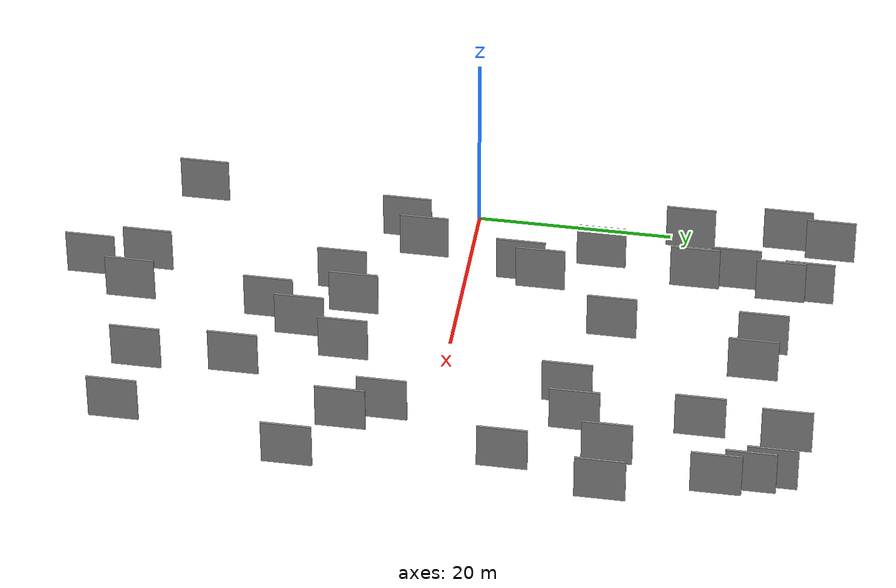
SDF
<sdf version="1.6">
 <world name="default">
  <scene>
   <sky><clouds><speed>12</speed></clouds></sky>
   <ambient>0.4 0.4 0.4 1</ambient>
   <background>0.7 0.7 0.7 1</background>
   <shadows>1</shadows>
  </scene>
  <gravity>0 0 -9.8066</gravity>
  <magnetic_field>6e-06 2.3e-05 -4.2e-05</magnetic_field>
  <physics default="0" name="default_physics" type="ode">
   <ode>
    <solver>
     <type>quick</type>
     <iters>10</iters>
     <sor>1.0</sor>
     <use_dynamic_moi_rescaling>0</use_dynamic_moi_rescaling>
    </solver>
    <constraints>
     <cfm>0</cfm>
     <erp>0.2</erp>
     <contact_max_correcting_vel>100</contact_max_correcting_vel>
     <contact_surface_layer>0.001</contact_surface_layer>
    </constraints>
   </ode>
   <max_step_size>0.004</max_step_size>
   <real_time_factor>1</real_time_factor>
   <real_time_update_rate>250</real_time_update_rate>
  </physics>
  <light name="sun" type="directional">
   <pose>0 0 10 0 0 0</pose>
   <diffuse>0.8 0.8 0.8 1</diffuse>
   <specular>0.2 0.2 0.2 1</specular>
   <attenuation>
    <range>1000</range>
    <constant>0.9</constant>
    <linear>0.01</linear>
    <quadratic>0.001</quadratic>
   </attenuation>
   <direction>-0.5 0.1 -0.9</direction>
  </light>
  <model name="grey_wall_1">
   <static>1</static>
   <pose>3.0240 32.3382 2.5 0.000000 0.000000 1.570796</pose>
   <link name="link">
    <pose>0 0 2.50 0 0 0</pose>
    <collision name="collision"><geometry><box><size>5.00 0.2 5.00</size></box></geometry></collision>
    <visual name="visual">
     <cast_shadows>0</cast_shadows>
     <geometry><box><size>5.00 0.2 5.00</size></box></geometry>
     <material>
      <script>
       <uri>model://grey_wall/materials/scripts</uri>
       <uri>model://grey_wall/materials/textures</uri>
       <name>vrc/grey_wall</name>
      </script>
     </material>
    </visual>
   </link>
  </model>
  <model name="grey_wall_2">
   <static>1</static>
   <pose>9.8291 27.6861 2.5 0.000000 0.000000 1.570796</pose>
   <link name="link">
    <pose>0 0 2.50 0 0 0</pose>
    <collision name="collision"><geometry><box><size>5.00 0.2 5.00</size></box></geometry></collision>
    <visual name="visual">
     <cast_shadows>0</cast_shadows>
     <geometry><box><size>5.00 0.2 5.00</size></box></geometry>
     <material>
      <script>
       <uri>model://grey_wall/materials/scripts</uri>
       <uri>model://grey_wall/materials/textures</uri>
       <name>vrc/grey_wall</name>
      </script>
     </material>
    </visual>
   </link>
  </model>
  <model name="grey_wall_3">
   <static>1</static>
   <pose>23.4976 -14.7155 2.5 0.000000 0.000000 1.570796</pose>
   <link name="link">
    <pose>0 0 2.50 0 0 0</pose>
    <collision name="collision"><geometry><box><size>5.00 0.2 5.00</size></box></geometry></collision>
    <visual name="visual">
     <cast_shadows>0</cast_shadows>
     <geometry><box><size>5.00 0.2 5.00</size></box></geometry>
     <material>
      <script>
       <uri>model://grey_wall/materials/scripts</uri>
       <uri>model://grey_wall/materials/textures</uri>
       <name>vrc/grey_wall</name>
      </script>
     </material>
    </visual>
   </link>
  </model>
  <model name="grey_wall_4">
   <static>1</static>
   <pose>8.4469 13.7940 2.5 0.000000 0.000000 1.570796</pose>
   <link name="link">
    <pose>0 0 2.50 0 0 0</pose>
    <collision name="collision"><geometry><box><size>5.00 0.2 5.00</size></box></geometry></collision>
    <visual name="visual">
     <cast_shadows>0</cast_shadows>
     <geometry><box><size>5.00 0.2 5.00</size></box></geometry>
     <material>
      <script>
       <uri>model://grey_wall/materials/scripts</uri>
       <uri>model://grey_wall/materials/textures</uri>
       <name>vrc/grey_wall</name>
      </script>
     </material>
    </visual>
   </link>
  </model>
  <model name="grey_wall_5">
   <static>1</static>
   <pose>42.3496 -12.6047 2.5 0.000000 0.000000 1.570796</pose>
   <link name="link">
    <pose>0 0 2.50 0 0 0</pose>
    <collision name="collision"><geometry><box><size>5.00 0.2 5.00</size></box></geometry></collision>
    <visual name="visual">
     <cast_shadows>0</cast_shadows>
     <geometry><box><size>5.00 0.2 5.00</size></box></geometry>
     <material>
      <script>
       <uri>model://grey_wall/materials/scripts</uri>
       <uri>model://grey_wall/materials/textures</uri>
       <name>vrc/grey_wall</name>
      </script>
     </material>
    </visual>
   </link>
  </model>
  <model name="grey_wall_6">
   <static>1</static>
   <pose>11.7764 5.9705 2.5 0.000000 0.000000 1.570796</pose>
   <link name="link">
    <pose>0 0 2.50 0 0 0</pose>
    <collision name="collision"><geometry><box><size>5.00 0.2 5.00</size></box></geometry></collision>
    <visual name="visual">
     <cast_shadows>0</cast_shadows>
     <geometry><box><size>5.00 0.2 5.00</size></box></geometry>
     <material>
      <script>
       <uri>model://grey_wall/materials/scripts</uri>
       <uri>model://grey_wall/materials/textures</uri>
       <name>vrc/grey_wall</name>
      </script>
     </material>
    </visual>
   </link>
  </model>
  <model name="grey_wall_7">
   <static>1</static>
   <pose>26.3177 -9.8103 2.5 0.000000 0.000000 1.570796</pose>
   <link name="link">
    <pose>0 0 2.50 0 0 0</pose>
    <collision name="collision"><geometry><box><size>5.00 0.2 5.00</size></box></geometry></collision>
    <visual name="visual">
     <cast_shadows>0</cast_shadows>
     <geometry><box><size>5.00 0.2 5.00</size></box></geometry>
     <material>
      <script>
       <uri>model://grey_wall/materials/scripts</uri>
       <uri>model://grey_wall/materials/textures</uri>
       <name>vrc/grey_wall</name>
      </script>
     </material>
    </visual>
   </link>
  </model>
  <model name="grey_wall_8">
   <static>1</static>
   <pose>6.7058 -6.4565 2.5 0.000000 0.000000 1.570796</pose>
   <link name="link">
    <pose>0 0 2.50 0 0 0</pose>
    <collision name="collision"><geometry><box><size>5.00 0.2 5.00</size></box></geometry></collision>
    <visual name="visual">
     <cast_shadows>0</cast_shadows>
     <geometry><box><size>5.00 0.2 5.00</size></box></geometry>
     <material>
      <script>
       <uri>model://grey_wall/materials/scripts</uri>
       <uri>model://grey_wall/materials/textures</uri>
       <name>vrc/grey_wall</name>
      </script>
     </material>
    </visual>
   </link>
  </model>
  <model name="grey_wall_9">
   <static>1</static>
   <pose>30.5753 -29.9207 2.5 0.000000 0.000000 1.570796</pose>
   <link name="link">
    <pose>0 0 2.50 0 0 0</pose>
    <collision name="collision"><geometry><box><size>5.00 0.2 5.00</size></box></geometry></collision>
    <visual name="visual">
     <cast_shadows>0</cast_shadows>
     <geometry><box><size>5.00 0.2 5.00</size></box></geometry>
     <material>
      <script>
       <uri>model://grey_wall/materials/scripts</uri>
       <uri>model://grey_wall/materials/textures</uri>
       <name>vrc/grey_wall</name>
      </script>
     </material>
    </visual>
   </link>
  </model>
  <model name="grey_wall_10">
   <static>1</static>
   <pose>32.3919 26.5118 2.5 0.000000 0.000000 1.570796</pose>
   <link name="link">
    <pose>0 0 2.50 0 0 0</pose>
    <collision name="collision"><geometry><box><size>5.00 0.2 5.00</size></box></geometry></collision>
    <visual name="visual">
     <cast_shadows>0</cast_shadows>
     <geometry><box><size>5.00 0.2 5.00</size></box></geometry>
     <material>
      <script>
       <uri>model://grey_wall/materials/scripts</uri>
       <uri>model://grey_wall/materials/textures</uri>
       <name>vrc/grey_wall</name>
      </script>
     </material>
    </visual>
   </link>
  </model>
  <model name="grey_wall_11">
   <static>1</static>
   <pose>39.7655 8.0838 2.5 0.000000 0.000000 1.570796</pose>
   <link name="link">
    <pose>0 0 2.50 0 0 0</pose>
    <collision name="collision"><geometry><box><size>5.00 0.2 5.00</size></box></geometry></collision>
    <visual name="visual">
     <cast_shadows>0</cast_shadows>
     <geometry><box><size>5.00 0.2 5.00</size></box></geometry>
     <material>
      <script>
       <uri>model://grey_wall/materials/scripts</uri>
       <uri>model://grey_wall/materials/textures</uri>
       <name>vrc/grey_wall</name>
      </script>
     </material>
    </visual>
   </link>
  </model>
  <model name="grey_wall_12">
   <static>1</static>
   <pose>37.5362 18.0105 2.5 0.000000 0.000000 1.570796</pose>
   <link name="link">
    <pose>0 0 2.50 0 0 0</pose>
    <collision name="collision"><geometry><box><size>5.00 0.2 5.00</size></box></geometry></collision>
    <visual name="visual">
     <cast_shadows>0</cast_shadows>
     <geometry><box><size>5.00 0.2 5.00</size></box></geometry>
     <material>
      <script>
       <uri>model://grey_wall/materials/scripts</uri>
       <uri>model://grey_wall/materials/textures</uri>
       <name>vrc/grey_wall</name>
      </script>
     </material>
    </visual>
   </link>
  </model>
  <model name="grey_wall_13">
   <static>1</static>
   <pose>33.1508 35.0678 2.5 0.000000 0.000000 1.570796</pose>
   <link name="link">
    <pose>0 0 2.50 0 0 0</pose>
    <collision name="collision"><geometry><box><size>5.00 0.2 5.00</size></box></geometry></collision>
    <visual name="visual">
     <cast_shadows>0</cast_shadows>
     <geometry><box><size>5.00 0.2 5.00</size></box></geometry>
     <material>
      <script>
       <uri>model://grey_wall/materials/scripts</uri>
       <uri>model://grey_wall/materials/textures</uri>
       <name>vrc/grey_wall</name>
      </script>
     </material>
    </visual>
   </link>
  </model>
  <model name="grey_wall_14">
   <static>1</static>
   <pose>11.1212 32.3318 2.5 0.000000 0.000000 1.570796</pose>
   <link name="link">
    <pose>0 0 2.50 0 0 0</pose>
    <collision name="collision"><geometry><box><size>5.00 0.2 5.00</size></box></geometry></collision>
    <visual name="visual">
     <cast_shadows>0</cast_shadows>
     <geometry><box><size>5.00 0.2 5.00</size></box></geometry>
     <material>
      <script>
       <uri>model://grey_wall/materials/scripts</uri>
       <uri>model://grey_wall/materials/textures</uri>
       <name>vrc/grey_wall</name>
      </script>
     </material>
    </visual>
   </link>
  </model>
  <model name="grey_wall_15">
   <static>1</static>
   <pose>42.7084 17.9801 2.5 0.000000 0.000000 1.570796</pose>
   <link name="link">
    <pose>0 0 2.50 0 0 0</pose>
    <collision name="collision"><geometry><box><size>5.00 0.2 5.00</size></box></geometry></collision>
    <visual name="visual">
     <cast_shadows>0</cast_shadows>
     <geometry><box><size>5.00 0.2 5.00</size></box></geometry>
     <material>
      <script>
       <uri>model://grey_wall/materials/scripts</uri>
       <uri>model://grey_wall/materials/textures</uri>
       <name>vrc/grey_wall</name>
      </script>
     </material>
    </visual>
   </link>
  </model>
  <model name="grey_wall_16">
   <static>1</static>
   <pose>19.0860 16.1743 2.5 0.000000 0.000000 1.570796</pose>
   <link name="link">
    <pose>0 0 2.50 0 0 0</pose>
    <collision name="collision"><geometry><box><size>5.00 0.2 5.00</size></box></geometry></collision>
    <visual name="visual">
     <cast_shadows>0</cast_shadows>
     <geometry><box><size>5.00 0.2 5.00</size></box></geometry>
     <material>
      <script>
       <uri>model://grey_wall/materials/scripts</uri>
       <uri>model://grey_wall/materials/textures</uri>
       <name>vrc/grey_wall</name>
      </script>
     </material>
    </visual>
   </link>
  </model>
  <model name="grey_wall_17">
   <static>1</static>
   <pose>10.8836 35.2054 2.5 0.000000 0.000000 1.570796</pose>
   <link name="link">
    <pose>0 0 2.50 0 0 0</pose>
    <collision name="collision"><geometry><box><size>5.00 0.2 5.00</size></box></geometry></collision>
    <visual name="visual">
     <cast_shadows>0</cast_shadows>
     <geometry><box><size>5.00 0.2 5.00</size></box></geometry>
     <material>
      <script>
       <uri>model://grey_wall/materials/scripts</uri>
       <uri>model://grey_wall/materials/textures</uri>
       <name>vrc/grey_wall</name>
      </script>
     </material>
    </visual>
   </link>
  </model>
  <model name="grey_wall_18">
   <static>1</static>
   <pose>12.7878 8.1145 2.5 0.000000 0.000000 1.570796</pose>
   <link name="link">
    <pose>0 0 2.50 0 0 0</pose>
    <collision name="collision"><geometry><box><size>5.00 0.2 5.00</size></box></geometry></collision>
    <visual name="visual">
     <cast_shadows>0</cast_shadows>
     <geometry><box><size>5.00 0.2 5.00</size></box></geometry>
     <material>
      <script>
       <uri>model://grey_wall/materials/scripts</uri>
       <uri>model://grey_wall/materials/textures</uri>
       <name>vrc/grey_wall</name>
      </script>
     </material>
    </visual>
   </link>
  </model>
  <model name="grey_wall_19">
   <static>1</static>
   <pose>4.1450 22.4638 2.5 0.000000 0.000000 1.570796</pose>
   <link name="link">
    <pose>0 0 2.50 0 0 0</pose>
    <collision name="collision"><geometry><box><size>5.00 0.2 5.00</size></box></geometry></collision>
    <visual name="visual">
     <cast_shadows>0</cast_shadows>
     <geometry><box><size>5.00 0.2 5.00</size></box></geometry>
     <material>
      <script>
       <uri>model://grey_wall/materials/scripts</uri>
       <uri>model://grey_wall/materials/textures</uri>
       <name>vrc/grey_wall</name>
      </script>
     </material>
    </visual>
   </link>
  </model>
  <model name="grey_wall_20">
   <static>1</static>
   <pose>15.8582 -11.6536 2.5 0.000000 0.000000 1.570796</pose>
   <link name="link">
    <pose>0 0 2.50 0 0 0</pose>
    <collision name="collision"><geometry><box><size>5.00 0.2 5.00</size></box></geometry></collision>
    <visual name="visual">
     <cast_shadows>0</cast_shadows>
     <geometry><box><size>5.00 0.2 5.00</size></box></geometry>
     <material>
      <script>
       <uri>model://grey_wall/materials/scripts</uri>
       <uri>model://grey_wall/materials/textures</uri>
       <name>vrc/grey_wall</name>
      </script>
     </material>
    </visual>
   </link>
  </model>
  <model name="grey_wall_21">
   <static>1</static>
   <pose>9.4870 -4.2810 2.5 0.000000 0.000000 1.570796</pose>
   <link name="link">
    <pose>0 0 2.50 0 0 0</pose>
    <collision name="collision"><geometry><box><size>5.00 0.2 5.00</size></box></geometry></collision>
    <visual name="visual">
     <cast_shadows>0</cast_shadows>
     <geometry><box><size>5.00 0.2 5.00</size></box></geometry>
     <material>
      <script>
       <uri>model://grey_wall/materials/scripts</uri>
       <uri>model://grey_wall/materials/textures</uri>
       <name>vrc/grey_wall</name>
      </script>
     </material>
    </visual>
   </link>
  </model>
  <model name="grey_wall_22">
   <static>1</static>
   <pose>39.5020 32.1715 2.5 0.000000 0.000000 1.570796</pose>
   <link name="link">
    <pose>0 0 2.50 0 0 0</pose>
    <collision name="collision"><geometry><box><size>5.00 0.2 5.00</size></box></geometry></collision>
    <visual name="visual">
     <cast_shadows>0</cast_shadows>
     <geometry><box><size>5.00 0.2 5.00</size></box></geometry>
     <material>
      <script>
       <uri>model://grey_wall/materials/scripts</uri>
       <uri>model://grey_wall/materials/textures</uri>
       <name>vrc/grey_wall</name>
      </script>
     </material>
    </visual>
   </link>
  </model>
  <model name="grey_wall_23">
   <static>1</static>
   <pose>21.2196 -18.2539 2.5 0.000000 0.000000 1.570796</pose>
   <link name="link">
    <pose>0 0 2.50 0 0 0</pose>
    <collision name="collision"><geometry><box><size>5.00 0.2 5.00</size></box></geometry></collision>
    <visual name="visual">
     <cast_shadows>0</cast_shadows>
     <geometry><box><size>5.00 0.2 5.00</size></box></geometry>
     <material>
      <script>
       <uri>model://grey_wall/materials/scripts</uri>
       <uri>model://grey_wall/materials/textures</uri>
       <name>vrc/grey_wall</name>
      </script>
     </material>
    </visual>
   </link>
  </model>
  <model name="grey_wall_24">
   <static>1</static>
   <pose>33.3177 14.2906 2.5 0.000000 0.000000 1.570796</pose>
   <link name="link">
    <pose>0 0 2.50 0 0 0</pose>
    <collision name="collision"><geometry><box><size>5.00 0.2 5.00</size></box></geometry></collision>
    <visual name="visual">
     <cast_shadows>0</cast_shadows>
     <geometry><box><size>5.00 0.2 5.00</size></box></geometry>
     <material>
      <script>
       <uri>model://grey_wall/materials/scripts</uri>
       <uri>model://grey_wall/materials/textures</uri>
       <name>vrc/grey_wall</name>
      </script>
     </material>
    </visual>
   </link>
  </model>
  <model name="grey_wall_25">
   <static>1</static>
   <pose>36.4399 -8.3549 2.5 0.000000 0.000000 1.570796</pose>
   <link name="link">
    <pose>0 0 2.50 0 0 0</pose>
    <collision name="collision"><geometry><box><size>5.00 0.2 5.00</size></box></geometry></collision>
    <visual name="visual">
     <cast_shadows>0</cast_shadows>
     <geometry><box><size>5.00 0.2 5.00</size></box></geometry>
     <material>
      <script>
       <uri>model://grey_wall/materials/scripts</uri>
       <uri>model://grey_wall/materials/textures</uri>
       <name>vrc/grey_wall</name>
      </script>
     </material>
    </visual>
   </link>
  </model>
  <model name="grey_wall_26">
   <static>1</static>
   <pose>4.0799 36.7621 2.5 0.000000 0.000000 1.570796</pose>
   <link name="link">
    <pose>0 0 2.50 0 0 0</pose>
    <collision name="collision"><geometry><box><size>5.00 0.2 5.00</size></box></geometry></collision>
    <visual name="visual">
     <cast_shadows>0</cast_shadows>
     <geometry><box><size>5.00 0.2 5.00</size></box></geometry>
     <material>
      <script>
       <uri>model://grey_wall/materials/scripts</uri>
       <uri>model://grey_wall/materials/textures</uri>
       <name>vrc/grey_wall</name>
      </script>
     </material>
    </visual>
   </link>
  </model>
  <model name="grey_wall_27">
   <static>1</static>
   <pose>23.3341 30.7837 2.5 0.000000 0.000000 1.570796</pose>
   <link name="link">
    <pose>0 0 2.50 0 0 0</pose>
    <collision name="collision"><geometry><box><size>5.00 0.2 5.00</size></box></geometry></collision>
    <visual name="visual">
     <cast_shadows>0</cast_shadows>
     <geometry><box><size>5.00 0.2 5.00</size></box></geometry>
     <material>
      <script>
       <uri>model://grey_wall/materials/scripts</uri>
       <uri>model://grey_wall/materials/textures</uri>
       <name>vrc/grey_wall</name>
      </script>
     </material>
    </visual>
   </link>
  </model>
  <model name="grey_wall_28">
   <static>1</static>
   <pose>40.3029 28.9123 2.5 0.000000 0.000000 1.570796</pose>
   <link name="link">
    <pose>0 0 2.50 0 0 0</pose>
    <collision name="collision"><geometry><box><size>5.00 0.2 5.00</size></box></geometry></collision>
    <visual name="visual">
     <cast_shadows>0</cast_shadows>
     <geometry><box><size>5.00 0.2 5.00</size></box></geometry>
     <material>
      <script>
       <uri>model://grey_wall/materials/scripts</uri>
       <uri>model://grey_wall/materials/textures</uri>
       <name>vrc/grey_wall</name>
      </script>
     </material>
    </visual>
   </link>
  </model>
  <model name="grey_wall_29">
   <static>1</static>
   <pose>19.2934 -9.9278 2.5 0.000000 0.000000 1.570796</pose>
   <link name="link">
    <pose>0 0 2.50 0 0 0</pose>
    <collision name="collision"><geometry><box><size>5.00 0.2 5.00</size></box></geometry></collision>
    <visual name="visual">
     <cast_shadows>0</cast_shadows>
     <geometry><box><size>5.00 0.2 5.00</size></box></geometry>
     <material>
      <script>
       <uri>model://grey_wall/materials/scripts</uri>
       <uri>model://grey_wall/materials/textures</uri>
       <name>vrc/grey_wall</name>
      </script>
     </material>
    </visual>
   </link>
  </model>
  <model name="grey_wall_30">
   <static>1</static>
   <pose>29.4686 13.0612 2.5 0.000000 0.000000 1.570796</pose>
   <link name="link">
    <pose>0 0 2.50 0 0 0</pose>
    <collision name="collision"><geometry><box><size>5.00 0.2 5.00</size></box></geometry></collision>
    <visual name="visual">
     <cast_shadows>0</cast_shadows>
     <geometry><box><size>5.00 0.2 5.00</size></box></geometry>
     <material>
      <script>
       <uri>model://grey_wall/materials/scripts</uri>
       <uri>model://grey_wall/materials/textures</uri>
       <name>vrc/grey_wall</name>
      </script>
     </material>
    </visual>
   </link>
  </model>
  <model name="grey_wall_31">
   <static>1</static>
   <pose>15.6518 -31.7226 2.5 0.000000 0.000000 1.570796</pose>
   <link name="link">
    <pose>0 0 2.50 0 0 0</pose>
    <collision name="collision"><geometry><box><size>5.00 0.2 5.00</size></box></geometry></collision>
    <visual name="visual">
     <cast_shadows>0</cast_shadows>
     <geometry><box><size>5.00 0.2 5.00</size></box></geometry>
     <material>
      <script>
       <uri>model://grey_wall/materials/scripts</uri>
       <uri>model://grey_wall/materials/textures</uri>
       <name>vrc/grey_wall</name>
      </script>
     </material>
    </visual>
   </link>
  </model>
  <model name="grey_wall_32">
   <static>1</static>
   <pose>3.9060 -28.1129 2.5 0.000000 0.000000 1.570796</pose>
   <link name="link">
    <pose>0 0 2.50 0 0 0</pose>
    <collision name="collision"><geometry><box><size>5.00 0.2 5.00</size></box></geometry></collision>
    <visual name="visual">
     <cast_shadows>0</cast_shadows>
     <geometry><box><size>5.00 0.2 5.00</size></box></geometry>
     <material>
      <script>
       <uri>model://grey_wall/materials/scripts</uri>
       <uri>model://grey_wall/materials/textures</uri>
       <name>vrc/grey_wall</name>
      </script>
     </material>
    </visual>
   </link>
  </model>
  <model name="grey_wall_33">
   <static>1</static>
   <pose>17.3051 -37.2956 2.5 0.000000 0.000000 1.570796</pose>
   <link name="link">
    <pose>0 0 2.50 0 0 0</pose>
    <collision name="collision"><geometry><box><size>5.00 0.2 5.00</size></box></geometry></collision>
    <visual name="visual">
     <cast_shadows>0</cast_shadows>
     <geometry><box><size>5.00 0.2 5.00</size></box></geometry>
     <material>
      <script>
       <uri>model://grey_wall/materials/scripts</uri>
       <uri>model://grey_wall/materials/textures</uri>
       <name>vrc/grey_wall</name>
      </script>
     </material>
    </visual>
   </link>
  </model>
  <model name="grey_wall_34">
   <static>1</static>
   <pose>34.5073 -4.5478 2.5 0.000000 0.000000 1.570796</pose>
   <link name="link">
    <pose>0 0 2.50 0 0 0</pose>
    <collision name="collision"><geometry><box><size>5.00 0.2 5.00</size></box></geometry></collision>
    <visual name="visual">
     <cast_shadows>0</cast_shadows>
     <geometry><box><size>5.00 0.2 5.00</size></box></geometry>
     <material>
      <script>
       <uri>model://grey_wall/materials/scripts</uri>
       <uri>model://grey_wall/materials/textures</uri>
       <name>vrc/grey_wall</name>
      </script>
     </material>
    </visual>
   </link>
  </model>
  <model name="grey_wall_35">
   <static>1</static>
   <pose>20.3863 -32.6083 2.5 0.000000 0.000000 1.570796</pose>
   <link name="link">
    <pose>0 0 2.50 0 0 0</pose>
    <collision name="collision"><geometry><box><size>5.00 0.2 5.00</size></box></geometry></collision>
    <visual name="visual">
     <cast_shadows>0</cast_shadows>
     <geometry><box><size>5.00 0.2 5.00</size></box></geometry>
     <material>
      <script>
       <uri>model://grey_wall/materials/scripts</uri>
       <uri>model://grey_wall/materials/textures</uri>
       <name>vrc/grey_wall</name>
      </script>
     </material>
    </visual>
   </link>
  </model>
  <model name="grey_wall_36">
   <static>1</static>
   <pose>38.6686 34.1729 2.5 0.000000 0.000000 1.570796</pose>
   <link name="link">
    <pose>0 0 2.50 0 0 0</pose>
    <collision name="collision"><geometry><box><size>5.00 0.2 5.00</size></box></geometry></collision>
    <visual name="visual">
     <cast_shadows>0</cast_shadows>
     <geometry><box><size>5.00 0.2 5.00</size></box></geometry>
     <material>
      <script>
       <uri>model://grey_wall/materials/scripts</uri>
       <uri>model://grey_wall/materials/textures</uri>
       <name>vrc/grey_wall</name>
      </script>
     </material>
    </visual>
   </link>
  </model>
  <model name="grey_wall_37">
   <static>1</static>
   <pose>38.3783 -30.5924 2.5 0.000000 0.000000 1.570796</pose>
   <link name="link">
    <pose>0 0 2.50 0 0 0</pose>
    <collision name="collision"><geometry><box><size>5.00 0.2 5.00</size></box></geometry></collision>
    <visual name="visual">
     <cast_shadows>0</cast_shadows>
     <geometry><box><size>5.00 0.2 5.00</size></box></geometry>
     <material>
      <script>
       <uri>model://grey_wall/materials/scripts</uri>
       <uri>model://grey_wall/materials/textures</uri>
       <name>vrc/grey_wall</name>
      </script>
     </material>
    </visual>
   </link>
  </model>
  <model name="grey_wall_38">
   <static>1</static>
   <pose>10.3186 23.5559 2.5 0.000000 0.000000 1.570796</pose>
   <link name="link">
    <pose>0 0 2.50 0 0 0</pose>
    <collision name="collision"><geometry><box><size>5.00 0.2 5.00</size></box></geometry></collision>
    <visual name="visual">
     <cast_shadows>0</cast_shadows>
     <geometry><box><size>5.00 0.2 5.00</size></box></geometry>
     <material>
      <script>
       <uri>model://grey_wall/materials/scripts</uri>
       <uri>model://grey_wall/materials/textures</uri>
       <name>vrc/grey_wall</name>
      </script>
     </material>
    </visual>
   </link>
  </model>
  <model name="grey_wall_39">
   <static>1</static>
   <pose>19.3062 31.3905 2.5 0.000000 0.000000 1.570796</pose>
   <link name="link">
    <pose>0 0 2.50 0 0 0</pose>
    <collision name="collision"><geometry><box><size>5.00 0.2 5.00</size></box></geometry></collision>
    <visual name="visual">
     <cast_shadows>0</cast_shadows>
     <geometry><box><size>5.00 0.2 5.00</size></box></geometry>
     <material>
      <script>
       <uri>model://grey_wall/materials/scripts</uri>
       <uri>model://grey_wall/materials/textures</uri>
       <name>vrc/grey_wall</name>
      </script>
     </material>
    </visual>
   </link>
  </model>
  <model name="grey_wall_40">
   <static>1</static>
   <pose>30.0218 -20.2221 2.5 0.000000 0.000000 1.570796</pose>
   <link name="link">
    <pose>0 0 2.50 0 0 0</pose>
    <collision name="collision"><geometry><box><size>5.00 0.2 5.00</size></box></geometry></collision>
    <visual name="visual">
     <cast_shadows>0</cast_shadows>
     <geometry><box><size>5.00 0.2 5.00</size></box></geometry>
     <material>
      <script>
       <uri>model://grey_wall/materials/scripts</uri>
       <uri>model://grey_wall/materials/textures</uri>
       <name>vrc/grey_wall</name>
      </script>
     </material>
    </visual>
   </link>
  </model>
 </world>
</sdf>
